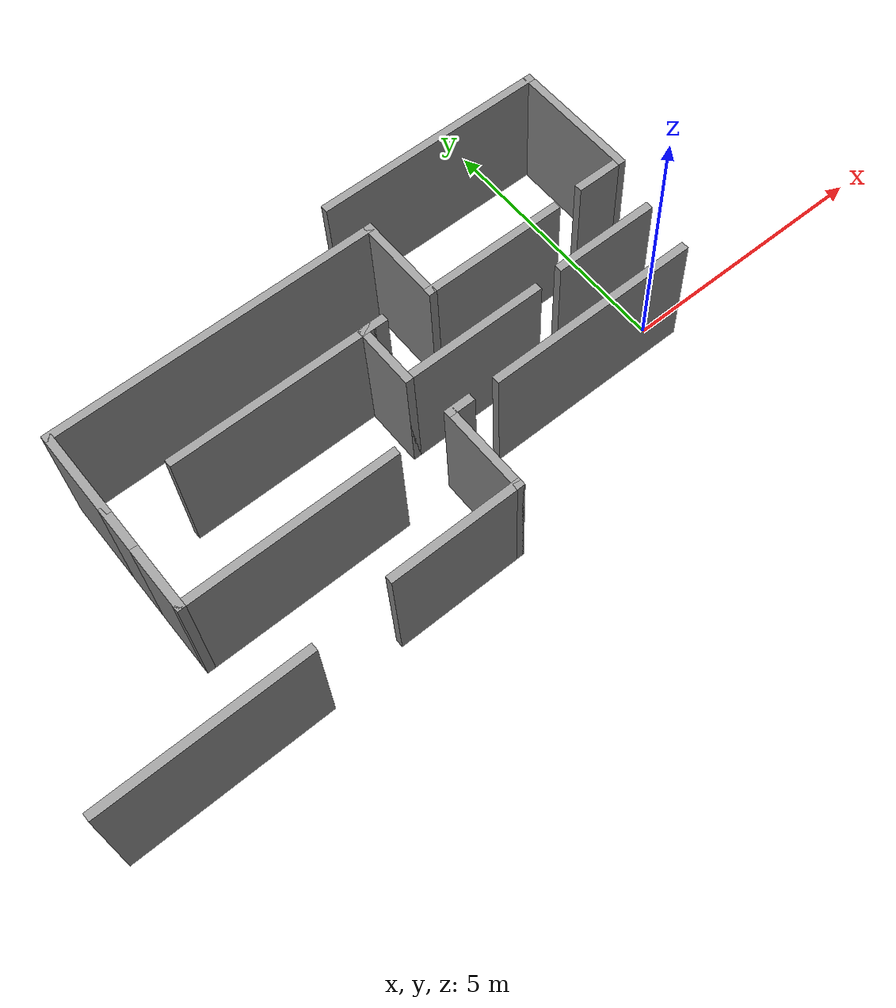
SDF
<?xml version='1.0'?>
<sdf version='1.7'>
  <model name='maze'>
    <pose>-5.61529 1.02803 0 0 -0 0</pose>
    <link name='Wall_10'>
      <collision name='Wall_10_Collision'>
        <geometry>
          <box>
            <size>1.25 0.15 2.5</size>
          </box>
        </geometry>
        <pose>0 0 1.25 0 -0 0</pose>
      </collision>
      <visual name='Wall_10_Visual'>
        <pose>0 0 1.25 0 -0 0</pose>
        <geometry>
          <box>
            <size>1.25 0.15 2.5</size>
          </box>
        </geometry>
        <material>
          <script>
            <uri>file://media/materials/scripts/gazebo.material</uri>
            <name>Gazebo/Grey</name>
          </script>
          <ambient>1 1 1 1</ambient>
        </material>
        <meta>
          <layer>0</layer>
        </meta>
      </visual>
      <pose>-3.81239 -0.752218 0 0 -0 1.5708</pose>
    </link>
    <link name='Wall_11'>
      <collision name='Wall_11_Collision'>
        <geometry>
          <box>
            <size>1 0.15 2.5</size>
          </box>
        </geometry>
        <pose>0 0 1.25 0 -0 0</pose>
      </collision>
      <visual name='Wall_11_Visual'>
        <pose>0 0 1.25 0 -0 0</pose>
        <geometry>
          <box>
            <size>1 0.15 2.5</size>
          </box>
        </geometry>
        <material>
          <script>
            <uri>file://media/materials/scripts/gazebo.material</uri>
            <name>Gazebo/Grey</name>
          </script>
          <ambient>1 1 1 1</ambient>
        </material>
        <meta>
          <layer>0</layer>
        </meta>
      </visual>
      <pose>-3.81239 0.222782 0 0 -0 1.5708</pose>
    </link>
    <link name='Wall_13'>
      <collision name='Wall_13_Collision'>
        <geometry>
          <box>
            <size>3.75 0.15 2.5</size>
          </box>
        </geometry>
        <pose>0 0 1.25 0 -0 0</pose>
      </collision>
      <visual name='Wall_13_Visual'>
        <pose>0 0 1.25 0 -0 0</pose>
        <geometry>
          <box>
            <size>3.75 0.15 2.5</size>
          </box>
        </geometry>
        <material>
          <script>
            <uri>file://media/materials/scripts/gazebo.material</uri>
            <name>Gazebo/Grey</name>
          </script>
          <ambient>1 1 1 1</ambient>
        </material>
        <meta>
          <layer>0</layer>
        </meta>
      </visual>
      <pose>-0.799277 0.710145 0 0 -0 0</pose>
    </link>
    <link name='Wall_14'>
      <collision name='Wall_14_Collision'>
        <geometry>
          <box>
            <size>0.25 0.15 2.5</size>
          </box>
        </geometry>
        <pose>0 0 1.25 0 -0 0</pose>
      </collision>
      <visual name='Wall_14_Visual'>
        <pose>0 0 1.25 0 -0 0</pose>
        <geometry>
          <box>
            <size>0.25 0.15 2.5</size>
          </box>
        </geometry>
        <material>
          <script>
            <uri>file://media/materials/scripts/gazebo.material</uri>
            <name>Gazebo/Grey</name>
          </script>
          <ambient>1 1 1 1</ambient>
        </material>
        <meta>
          <layer>0</layer>
        </meta>
      </visual>
      <pose>1.05072 0.710145 0 0 -0 0</pose>
    </link>
    <link name='Wall_15'>
      <collision name='Wall_15_Collision'>
        <geometry>
          <box>
            <size>0.25 0.15 2.5</size>
          </box>
        </geometry>
        <pose>0 0 1.25 0 -0 0</pose>
      </collision>
      <visual name='Wall_15_Visual'>
        <pose>0 0 1.25 0 -0 0</pose>
        <geometry>
          <box>
            <size>0.25 0.15 2.5</size>
          </box>
        </geometry>
        <material>
          <script>
            <uri>file://media/materials/scripts/gazebo.material</uri>
            <name>Gazebo/Grey</name>
          </script>
          <ambient>1 1 1 1</ambient>
        </material>
        <meta>
          <layer>0</layer>
        </meta>
      </visual>
      <pose>1.05072 0.710145 0 0 -0 3.14159</pose>
    </link>
    <link name='Wall_16'>
      <collision name='Wall_16_Collision'>
        <geometry>
          <box>
            <size>0.5 0.15 2.5</size>
          </box>
        </geometry>
        <pose>0 0 1.25 0 -0 0</pose>
      </collision>
      <visual name='Wall_16_Visual'>
        <pose>0 0 1.25 0 -0 0</pose>
        <geometry>
          <box>
            <size>0.5 0.15 2.5</size>
          </box>
        </geometry>
        <material>
          <script>
            <uri>file://media/materials/scripts/gazebo.material</uri>
            <name>Gazebo/Grey</name>
          </script>
          <ambient>1 1 1 1</ambient>
        </material>
        <meta>
          <layer>0</layer>
        </meta>
      </visual>
      <pose>1.17572 0.710145 0 0 -0 0</pose>
    </link>
    <link name='Wall_18'>
      <collision name='Wall_18_Collision'>
        <geometry>
          <box>
            <size>1.25 0.15 2.5</size>
          </box>
        </geometry>
        <pose>0 0 1.25 0 -0 0</pose>
      </collision>
      <visual name='Wall_18_Visual'>
        <pose>0 0 1.25 0 -0 0</pose>
        <geometry>
          <box>
            <size>1.25 0.15 2.5</size>
          </box>
        </geometry>
        <material>
          <script>
            <uri>file://media/materials/scripts/gazebo.material</uri>
            <name>Gazebo/Grey</name>
          </script>
          <ambient>1 1 1 1</ambient>
        </material>
        <meta>
          <layer>0</layer>
        </meta>
      </visual>
      <pose>1.00072 0.160145 0 0 -0 -1.5708</pose>
    </link>
    <link name='Wall_21'>
      <collision name='Wall_21_Collision'>
        <geometry>
          <box>
            <size>1.75 0.15 2.5</size>
          </box>
        </geometry>
        <pose>0 0 1.25 0 -0 0</pose>
      </collision>
      <visual name='Wall_21_Visual'>
        <pose>0 0 1.25 0 -0 0</pose>
        <geometry>
          <box>
            <size>1.75 0.15 2.5</size>
          </box>
        </geometry>
        <material>
          <script>
            <uri>file://media/materials/scripts/gazebo.material</uri>
            <name>Gazebo/Grey</name>
          </script>
          <ambient>1 1 1 1</ambient>
        </material>
        <meta>
          <layer>0</layer>
        </meta>
      </visual>
      <pose>-3.81239 1.44778 0 0 -0 1.5708</pose>
    </link>
    <link name='Wall_22'>
      <collision name='Wall_22_Collision'>
        <geometry>
          <box>
            <size>6.25 0.15 2.5</size>
          </box>
        </geometry>
        <pose>0 0 1.25 0 -0 0</pose>
      </collision>
      <visual name='Wall_22_Visual'>
        <pose>0 0 1.25 0 -0 0</pose>
        <geometry>
          <box>
            <size>6.25 0.15 2.5</size>
          </box>
        </geometry>
        <material>
          <script>
            <uri>file://media/materials/scripts/gazebo.material</uri>
            <name>Gazebo/Grey</name>
          </script>
          <ambient>1 1 1 1</ambient>
        </material>
        <meta>
          <layer>0</layer>
        </meta>
      </visual>
      <pose>-0.762388 2.24778 0 0 -0 0</pose>
    </link>
    <link name='Wall_24'>
      <collision name='Wall_24_Collision'>
        <geometry>
          <box>
            <size>1.75 0.15 2.5</size>
          </box>
        </geometry>
        <pose>0 0 1.25 0 -0 0</pose>
      </collision>
      <visual name='Wall_24_Visual'>
        <pose>0 0 1.25 0 -0 0</pose>
        <geometry>
          <box>
            <size>1.75 0.15 2.5</size>
          </box>
        </geometry>
        <material>
          <script>
            <uri>file://media/materials/scripts/gazebo.material</uri>
            <name>Gazebo/Grey</name>
          </script>
          <ambient>1 1 1 1</ambient>
        </material>
        <meta>
          <layer>0</layer>
        </meta>
      </visual>
      <pose>2.28761 1.44778 0 0 -0 -1.5708</pose>
    </link>
    <link name='Wall_26'>
      <collision name='Wall_26_Collision'>
        <geometry>
          <box>
            <size>0.5 0.15 2.5</size>
          </box>
        </geometry>
        <pose>0 0 1.25 0 -0 0</pose>
      </collision>
      <visual name='Wall_26_Visual'>
        <pose>0 0 1.25 0 -0 0</pose>
        <geometry>
          <box>
            <size>0.5 0.15 2.5</size>
          </box>
        </geometry>
        <material>
          <script>
            <uri>file://media/materials/scripts/gazebo.material</uri>
            <name>Gazebo/Grey</name>
          </script>
          <ambient>1 1 1 1</ambient>
        </material>
        <meta>
          <layer>0</layer>
        </meta>
      </visual>
      <pose>1.31356 -1.29823 0 0 -0 0</pose>
    </link>
    <link name='Wall_28'>
      <collision name='Wall_28_Collision'>
        <geometry>
          <box>
            <size>4 0.15 2.5</size>
          </box>
        </geometry>
        <pose>0 0 1.25 0 -0 0</pose>
      </collision>
      <visual name='Wall_28_Visual'>
        <pose>0 0 1.25 0 -0 0</pose>
        <geometry>
          <box>
            <size>4 0.15 2.5</size>
          </box>
        </geometry>
        <material>
          <script>
            <uri>file://media/materials/scripts/gazebo.material</uri>
            <name>Gazebo/Grey</name>
          </script>
          <ambient>1 1 1 1</ambient>
        </material>
        <meta>
          <layer>0</layer>
        </meta>
      </visual>
      <pose>4.02124 -1.30222 0 0 -0 0</pose>
    </link>
    <link name='Wall_30'>
      <collision name='Wall_30_Collision'>
        <geometry>
          <box>
            <size>2.75 0.15 2.5</size>
          </box>
        </geometry>
        <pose>0 0 1.25 0 -0 0</pose>
      </collision>
      <visual name='Wall_30_Visual'>
        <pose>0 0 1.25 0 -0 0</pose>
        <geometry>
          <box>
            <size>2.75 0.15 2.5</size>
          </box>
        </geometry>
        <material>
          <script>
            <uri>file://media/materials/scripts/gazebo.material</uri>
            <name>Gazebo/Grey</name>
          </script>
          <ambient>1 1 1 1</ambient>
        </material>
        <meta>
          <layer>0</layer>
        </meta>
      </visual>
      <pose>2.30072 -0.389855 0 0 -0 0</pose>
    </link>
    <link name='Wall_32'>
      <collision name='Wall_32_Collision'>
        <geometry>
          <box>
            <size>2 0.15 2.5</size>
          </box>
        </geometry>
        <pose>0 0 1.25 0 -0 0</pose>
      </collision>
      <visual name='Wall_32_Visual'>
        <pose>0 0 1.25 0 -0 0</pose>
        <geometry>
          <box>
            <size>2 0.15 2.5</size>
          </box>
        </geometry>
        <material>
          <script>
            <uri>file://media/materials/scripts/gazebo.material</uri>
            <name>Gazebo/Grey</name>
          </script>
          <ambient>1 1 1 1</ambient>
        </material>
        <meta>
          <layer>0</layer>
        </meta>
      </visual>
      <pose>5.12612 -0.330733 0 0 -0 0</pose>
    </link>
    <link name='Wall_34'>
      <collision name='Wall_34_Collision'>
        <geometry>
          <box>
            <size>2.75 0.15 2.5</size>
          </box>
        </geometry>
        <pose>0 0 1.25 0 -0 0</pose>
      </collision>
      <visual name='Wall_34_Visual'>
        <pose>0 0 1.25 0 -0 0</pose>
        <geometry>
          <box>
            <size>2.75 0.15 2.5</size>
          </box>
        </geometry>
        <material>
          <script>
            <uri>file://media/materials/scripts/gazebo.material</uri>
            <name>Gazebo/Grey</name>
          </script>
          <ambient>1 1 1 1</ambient>
        </material>
        <meta>
          <layer>0</layer>
        </meta>
      </visual>
      <pose>3.58761 0.647782 0 0 -0 0</pose>
    </link>
    <link name='Wall_36'>
      <collision name='Wall_36_Collision'>
        <geometry>
          <box>
            <size>1 0.15 2.5</size>
          </box>
        </geometry>
        <pose>0 0 1.25 0 -0 0</pose>
      </collision>
      <visual name='Wall_36_Visual'>
        <pose>0 0 1.25 0 -0 0</pose>
        <geometry>
          <box>
            <size>1 0.15 2.5</size>
          </box>
        </geometry>
        <material>
          <script>
            <uri>file://media/materials/scripts/gazebo.material</uri>
            <name>Gazebo/Grey</name>
          </script>
          <ambient>1 1 1 1</ambient>
        </material>
        <meta>
          <layer>0</layer>
        </meta>
      </visual>
      <pose>5.94457 0.687014 0 0 -0 0</pose>
    </link>
    <link name='Wall_37'>
      <collision name='Wall_37_Collision'>
        <geometry>
          <box>
            <size>2.5 0.15 2.5</size>
          </box>
        </geometry>
        <pose>0 0 1.25 0 -0 0</pose>
      </collision>
      <visual name='Wall_37_Visual'>
        <pose>0 0 1.25 0 -0 0</pose>
        <geometry>
          <box>
            <size>2.5 0.15 2.5</size>
          </box>
        </geometry>
        <material>
          <script>
            <uri>file://media/materials/scripts/gazebo.material</uri>
            <name>Gazebo/Grey</name>
          </script>
          <ambient>1 1 1 1</ambient>
        </material>
        <meta>
          <layer>0</layer>
        </meta>
      </visual>
      <pose>6.36957 1.86201 0 0 -0 1.5708</pose>
    </link>
    <link name='Wall_38'>
      <collision name='Wall_38_Collision'>
        <geometry>
          <box>
            <size>4.5 0.15 2.5</size>
          </box>
        </geometry>
        <pose>0 0 1.25 0 -0 0</pose>
      </collision>
      <visual name='Wall_38_Visual'>
        <pose>0 0 1.25 0 -0 0</pose>
        <geometry>
          <box>
            <size>4.5 0.15 2.5</size>
          </box>
        </geometry>
        <material>
          <script>
            <uri>file://media/materials/scripts/gazebo.material</uri>
            <name>Gazebo/Grey</name>
          </script>
          <ambient>1 1 1 1</ambient>
        </material>
        <meta>
          <layer>0</layer>
        </meta>
      </visual>
      <pose>4.19457 3.03701 0 0 -0 3.14159</pose>
    </link>
    <link name='Wall_4'>
      <collision name='Wall_4_Collision'>
        <geometry>
          <box>
            <size>3.75 0.15 2.5</size>
          </box>
        </geometry>
        <pose>0 0 1.25 0 -0 0</pose>
      </collision>
      <visual name='Wall_4_Visual'>
        <pose>0 0 1.25 0 -0 0</pose>
        <geometry>
          <box>
            <size>3.75 0.15 2.5</size>
          </box>
        </geometry>
        <material>
          <script>
            <uri>file://media/materials/scripts/gazebo.material</uri>
            <name>Gazebo/Grey</name>
          </script>
          <ambient>1 1 1 1</ambient>
        </material>
        <meta>
          <layer>0</layer>
        </meta>
      </visual>
      <pose>-4.56957 -3.03701 0 0 -0 0</pose>
    </link>
    <link name='Wall_6'>
      <collision name='Wall_6_Collision'>
        <geometry>
          <box>
            <size>2.5 0.15 2.5</size>
          </box>
        </geometry>
        <pose>0 0 1.25 0 -0 0</pose>
      </collision>
      <visual name='Wall_6_Visual'>
        <pose>0 0 1.25 0 -0 0</pose>
        <geometry>
          <box>
            <size>2.5 0.15 2.5</size>
          </box>
        </geometry>
        <material>
          <script>
            <uri>file://media/materials/scripts/gazebo.material</uri>
            <name>Gazebo/Grey</name>
          </script>
          <ambient>1 1 1 1</ambient>
        </material>
        <meta>
          <layer>0</layer>
        </meta>
      </visual>
      <pose>-0.036441 -2.89823 0 0 -0 0</pose>
    </link>
    <link name='Wall_7'>
      <collision name='Wall_7_Collision'>
        <geometry>
          <box>
            <size>1.75 0.15 2.5</size>
          </box>
        </geometry>
        <pose>0 0 1.25 0 -0 0</pose>
      </collision>
      <visual name='Wall_7_Visual'>
        <pose>0 0 1.25 0 -0 0</pose>
        <geometry>
          <box>
            <size>1.75 0.15 2.5</size>
          </box>
        </geometry>
        <material>
          <script>
            <uri>file://media/materials/scripts/gazebo.material</uri>
            <name>Gazebo/Grey</name>
          </script>
          <ambient>1 1 1 1</ambient>
        </material>
        <meta>
          <layer>0</layer>
        </meta>
      </visual>
      <pose>1.13856 -2.09823 0 0 -0 1.5708</pose>
    </link>
    <link name='Wall_9'>
      <collision name='Wall_9_Collision'>
        <geometry>
          <box>
            <size>4 0.15 2.5</size>
          </box>
        </geometry>
        <pose>0 0 1.25 0 -0 0</pose>
      </collision>
      <visual name='Wall_9_Visual'>
        <pose>0 0 1.25 0 -0 0</pose>
        <geometry>
          <box>
            <size>4 0.15 2.5</size>
          </box>
        </geometry>
        <material>
          <script>
            <uri>file://media/materials/scripts/gazebo.material</uri>
            <name>Gazebo/Grey</name>
          </script>
          <ambient>1 1 1 1</ambient>
        </material>
        <meta>
          <layer>0</layer>
        </meta>
      </visual>
      <pose>-1.88739 -1.30222 0 0 -0 3.14159</pose>
    </link>
    <static>1</static>
  </model>
</sdf>
